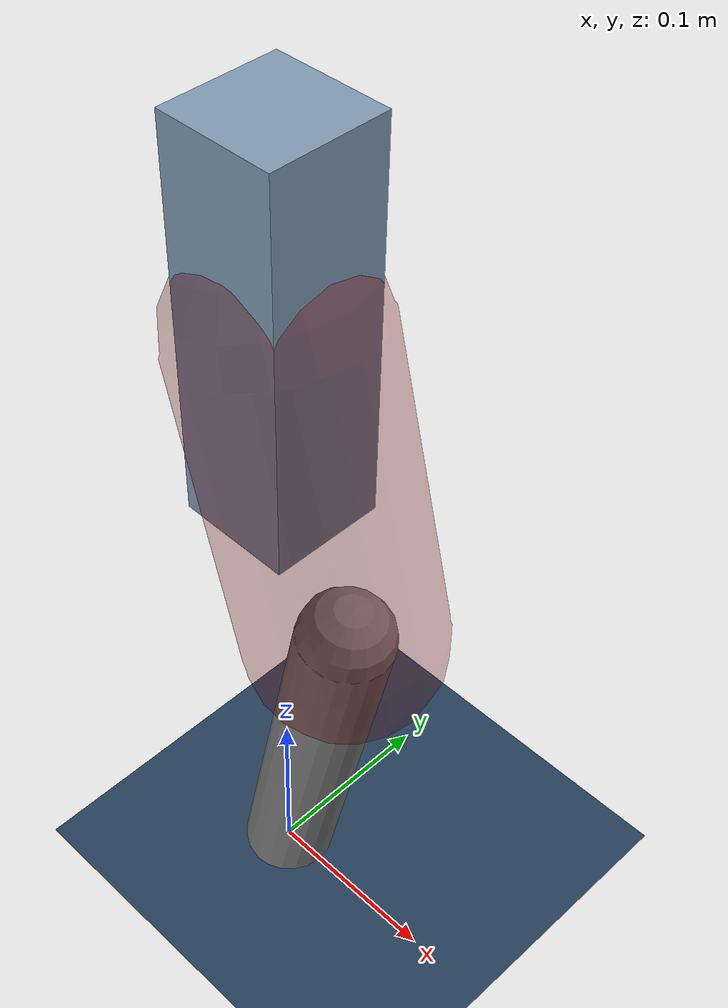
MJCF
<mujoco model="Hopper2D">
	<compiler inertiafromgeom="true" angle="radian" />
	<option timestep="0.001" integrator="implicit" cone="elliptic" solver="Newton" tolerance="1e-10" />

	<default>
		<geom contype="1" conaffinity="1" condim="3" friction="2 0.005 0.0001" solref="0.005 1" />
		<joint limited="true" damping="0.1" />
	</default>

	<asset>
		<texture name="skybox" type="skybox" builtin="gradient" rgb1=".4 .6 .8" rgb2="0 0 0" width="800" height="800" />
		<texture name="grid" type="2d" builtin="checker" rgb1=".1 .2 .3" rgb2=".2 .3 .4" width="300" height="300" mark="edge" markrgb=".2 .3 .4" />
		<material name="ground" texture="grid" texrepeat="1 1" texuniform="true" reflectance="0.1" />
		<material name="leg" rgba="0.5 0.6 0.7 1" />
	</asset>

	<worldbody>

		<geom name="floor" type="plane" size="5 5 0.25" material="ground" />

		<light directional="false" diffuse="0.8 0.8 0.8" specular="0.3 0.3 0.3" pos="0 0 2" dir="0 0 -1" />
		<light mode="targetbodycom" target="base" directional="false" diffuse="0.8 0.8 0.8" specular="0.3 0.3 0.3" pos="0 0 2" dir="0 0 -1" />

		<camera name="fixed" pos="0 -2 1" xyaxes="1 0 0 0 0 1" />
		<camera name="tracking" mode="trackcom" pos="0 -3 1" />

		<body name="root" pos="0 0 0.3672515195665561">
			<joint name="slide_x" type="slide" axis="1 0 0" range="-100 100" />
			<joint name="slide_z" type="slide" axis="0 0 1" range="0 10" />

			<body name="base" pos="0 0 0">
				<geom name="torso" type="box" size="0.03 0.03 0.1" mass="1.643" material="leg" />

				<body name="link1" pos="0 0 0" euler="0 1.3041204773652257 0">
					<joint type="hinge" axis="0 -1 0" pos="0 0 0" name="hinge1" limited="true" range="-3.14 3.14" stiffness="0" damping="0.1" />
					<geom name="thigh" type="capsule" fromto="0 0 0 0.16197860527062283 0 0" size="0.05" rgba="0.5 0 0 0.3" mass="0.6370486526494947" />

					<body name="link2" pos="0.16197860527062283 0 0" euler="0 0.46628478138730256 0">
						<joint type="hinge" axis="0 -1 0" pos="0 0 0" name="hinge2" limited="true" range="-3.14 3.14" stiffness="0" damping="0.1" />
						<geom name="shank" type="capsule" fromto="0 0 0 0.21527291429593332 0 0" size="0.025" mass="0.41371833143674663" />

					</body>
				</body>
			</body>
		</body>
	</worldbody>

	<actuator>
		<motor name="torque1" joint="hinge1" ctrlrange="-16.48429372566834 16.48429372566834" ctrllimited="true" gear="1" />
		<motor name="torque2" joint="hinge2" ctrlrange="-49.59916186826458 49.59916186826458" ctrllimited="true" gear="1" />
	</actuator>
</mujoco>
